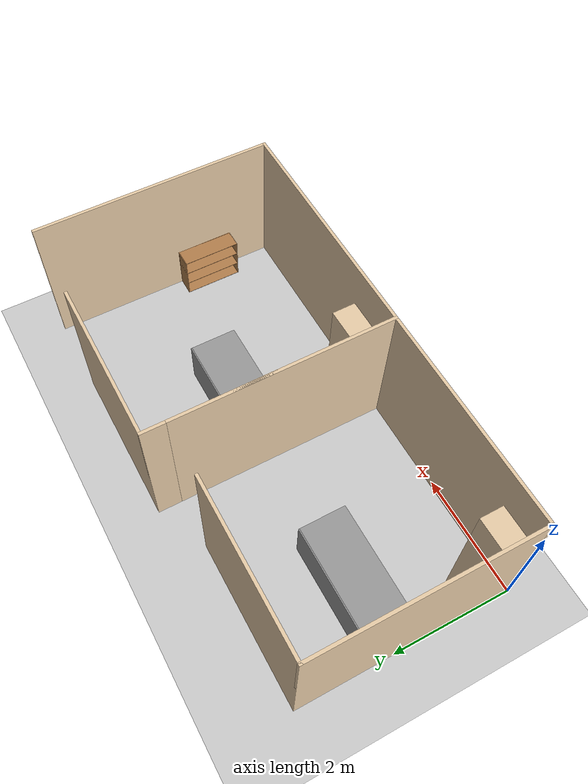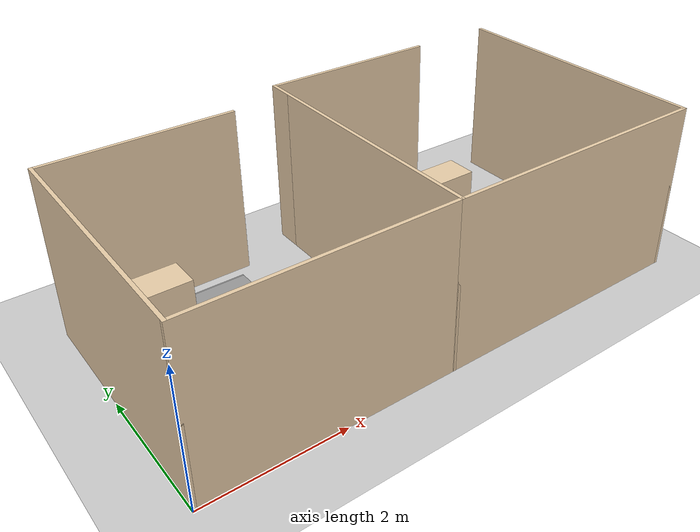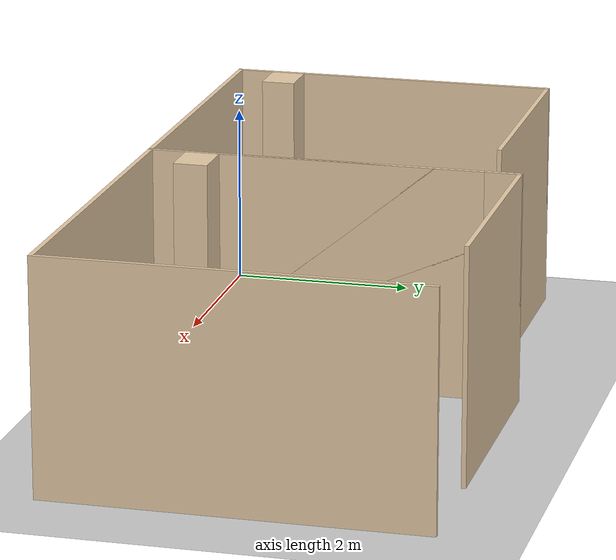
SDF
<?xml version="1.0"?>
<sdf version="1.7">
	<world name="default">
		<include>
			<uri>model://sun</uri>
			<pose>0 0 0 0 0 0</pose>
		</include>

		<include>
			<uri>model://ground_plane</uri>
			<pose>0 0 0 0 0 0</pose>
		</include>

		<include>
			<uri>model://Office1Walls</uri>
			<pose>0 0 0 0 0 0</pose>
		</include>

		<include>
			<uri>model://Office2Walls</uri>
			<pose>3.59 0 0 0 0 0</pose>
		</include>

		<include>
			<uri>model://Table</uri>
			<name>Table_1</name>
			<pose>0.05 1.65 0 0 0 0</pose>
		</include>

		<include>
			<uri>model://Table</uri>
			<name>Table_2</name>
			<pose>3.64 1.65 0 0 0 0</pose>
		</include>

		<include>
			<uri>model://FileCabinet</uri>
			<name>File_Cabinet</name>
			<pose>7.43 1.25 0 0 0 -1.5708</pose>
		</include>
	</world>
</sdf>

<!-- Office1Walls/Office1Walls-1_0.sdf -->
<sdf version="1.7">

	<model name="Office1Walls">

		<static>true</static>
		<link name="office">
			<collision name="left_wall_collision">
				<pose>0.025 1.82 1.25 1.5708 0 1.5708</pose>
				<geometry>
					<box>
						<size>3.64 2.5 0.05</size>
					</box>
				</geometry>
			</collision>
			<visual name="left_wall_visual">
				<pose>0.025 1.82 1.25 1.5708 0 1.5708</pose>
				<geometry>
					<box>
						<size>3.64 2.5 0.05</size>
						</box>
				</geometry>
				<material>
					<script>
						<uri>file://media/materials/scripts/gazebo.material</uri>
						<name>Gazebo/Grey</name>
					</script>

					<ambient>1 1 1 1</ambient>
					<diffuse>0.9098 0.80392 0.65882 1</diffuse>
					<specular>0.02 0.02 0.02 1</specular>
					<emissive>0 0 0 1</emissive>
				</material>
			</visual>

			<collision name="front_wall_collision">
				<pose>1.37 3.615 1.25 1.5708 0 0</pose>
				<geometry>
					<box>
						<size>2.74 2.5 0.05</size>
					</box>
				</geometry>
			</collision>
			<visual name="front_wall_visual">
				<pose>1.37 3.615 1.25 1.5708 0 0</pose>
				<geometry>
					<box>
						<size>2.74 2.5 0.05</size>
					</box>
				</geometry>
				<material>
					<script>
						<uri>file://media/materials/scripts/gazebo.material</uri>
						<name>Gazebo/Grey</name>
					</script>

					<ambient>1 1 1 1</ambient>
					<diffuse>0.9098 0.80392 0.65882 1</diffuse>
					<specular>0.02 0.02 0.02 1</specular>
					<emissive>0 0 0 1</emissive>
				</material>
			</visual>

			<visual name="right_wall_visual">
				<pose>3.615 1.82 1.25 1.5708 0 1.5708</pose>
				<geometry>
					<box>
						<size>3.64 2.5 0.05</size>
					</box>
				</geometry>
				<material>
					<script>
						<uri>file://media/materials/scripts/gazebo.material</uri>
						<name>Gazebo/Grey</name>
					</script>

					<ambient>1 1 1 1</ambient>
					<diffuse>0.9098 0.80392 0.65882 1</diffuse>
					<specular>0.02 0.02 0.02 1</specular>
					<emissive>0 0 0 1</emissive>
				</material>
			</visual>

			<collision name="back_wall_collision">
				<pose>1.82 0.025 1.25 1.5708 0 0</pose>
				<geometry>
					<box>
						<size>3.64 2.5 0.05</size>
					</box>
				</geometry>
			</collision>
			<visual name="back_wall_visual">
				<pose>1.82 0.025 1.25 1.5708  0 0</pose>
				<geometry>
					<box>
						<size>3.64 2.5 0.05</size>
					</box>
				</geometry>
				<material>
					<script>
						<uri>file://media/materials/scripts/gazebo.material</uri>
						<name>Gazebo/Grey</name>
					</script>

					<ambient>1 1 1 1</ambient>
					<diffuse>0.9098 0.80392 0.65882 1</diffuse>
					<specular>0.02 0.02 0.02 1</specular>
					<emissive>0 0 0 1</emissive>
				</material>
			</visual>

			<collision name="column_collision">
				<pose> 0.285 0.6 1.25 0 0 0</pose>
				<geometry>
					<box>
						<size>0.47 0.37 2.5</size>
					</box>
				</geometry>
			</collision>
			<visual name="column_visual">
				<pose>0.285 0.6 1.25 0 0 0</pose>
				<geometry>
					<box>
						<size>0.47 0.37 2.5</size>
					</box>
				</geometry>
				<material>
					<script>
						<uri>file://media/materials/scripts/gazebo.material</uri>
						<name>Gazebo/Grey</name>
					</script>

					<ambient>1 1 1 1</ambient>
					<diffuse>0.9098 0.80392 0.65882 1</diffuse>
					<specular>0.02 0.02 0.02 1</specular>
					<emissive>0 0 0 1</emissive>
				</material>
			</visual>
		</link>
	</model>
</sdf>

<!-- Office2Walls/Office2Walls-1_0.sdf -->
<sdf version="1.7">

	<model name="Office2Walls">

		<static>true</static>
		<link name="office">
			<collision name="left_wall_collision">
				<pose>0.025 2.02 1.25 1.5708 0 1.5708</pose>
				<geometry>
					<box>
						<size>4.04 2.5 0.05</size>
					</box>
				</geometry>
			</collision>
			<visual name="left_wall_visual">
				<pose>0.025 2.02 1.25 1.5708 0 1.5708</pose>
				<geometry>
					<box>
						<size>4.04 2.5 0.05</size>
						</box>
				</geometry>
				<material>
					<script>
						<uri>file://media/materials/scripts/gazebo.material</uri>
						<name>Gazebo/Grey</name>
					</script>

					<ambient>1 1 1 1</ambient>
					<diffuse>0.9098 0.80392 0.65882 1</diffuse>
					<specular>0.02 0.02 0.02 1</specular>
					<emissive>0 0 0 1</emissive>
				</material>
			</visual>

			<collision name="front_wall_collision">
				<pose>1.345 4.015 1.25 1.5708 0 0</pose>
				<geometry>
					<box>
						<size>2.69 2.5 0.05</size>
					</box>
				</geometry>
			</collision>
			<visual name="front_wall_visual">
				<pose>1.345 4.015 1.25 1.5708 0 0</pose>
				<geometry>
					<box>
						<size>2.69 2.5 0.05</size>
					</box>
				</geometry>
				<material>
					<script>
						<uri>file://media/materials/scripts/gazebo.material</uri>
						<name>Gazebo/Grey</name>
					</script>

					<ambient>1 1 1 1</ambient>
					<diffuse>0.9098 0.80392 0.65882 1</diffuse>
					<specular>0.02 0.02 0.02 1</specular>
					<emissive>0 0 0 1</emissive>
				</material>
			</visual>

			<collision name="right_wall_collision">
				<pose>4.015 2.02 1.25 1.5708 0 1.5708</pose>
				<geometry>
					<box>
						<size>4.04 2.5 0.05</size>
					</box>
				</geometry>
			</collision>
			<visual name="right_wall_visual">
				<pose>4.015 2.02 1.25 1.5708 0 1.5708</pose>
				<geometry>
					<box>
						<size>4.04 2.5 0.05</size>
					</box>
				</geometry>
				<material>
					<script>
						<uri>file://media/materials/scripts/gazebo.material</uri>
						<name>Gazebo/Grey</name>
					</script>

					<ambient>1 1 1 1</ambient>
					<diffuse>0.9098 0.80392 0.65882 1</diffuse>
					<specular>0.02 0.02 0.02 1</specular>
					<emissive>0 0 0 1</emissive>
				</material>
			</visual>

			<collision name="back_wall_collision">
				<pose>2.02 0.025 1.25 1.5708 0 0</pose>
				<geometry>
					<box>
						<size>4.04 2.5 0.05</size>
					</box>
				</geometry>
			</collision>
			<visual name="back_wall_visual">
				<pose>2.02 0.025 1.25 1.5708  0 0</pose>
				<geometry>
					<box>
						<size>4.04 2.5 0.05</size>
					</box>
				</geometry>
				<material>
					<script>
						<uri>file://media/materials/scripts/gazebo.material</uri>
						<name>Gazebo/Grey</name>
					</script>

					<ambient>1 1 1 1</ambient>
					<diffuse>0.9098 0.80392 0.65882 1</diffuse>
					<specular>0.02 0.02 0.02 1</specular>
					<emissive>0 0 0 1</emissive>
				</material>
			</visual>

			<collision name="column_collision">
				<pose> 0.285 0.6 1.25 0 0 0</pose>
				<geometry>
					<box>
						<size>0.47 0.37 2.5</size>
					</box>
				</geometry>
			</collision>
			<visual name="column_visual">
				<pose>0.285 0.6 1.25 0 0 0</pose>
				<geometry>
					<box>
						<size>0.47 0.37 2.5</size>
					</box>
				</geometry>
				<material>
					<script>
						<uri>file://media/materials/scripts/gazebo.material</uri>
						<name>Gazebo/Grey</name>
					</script>

					<ambient>1 1 1 1</ambient>
					<diffuse>0.9098 0.80392 0.65882 1</diffuse>
					<specular>0.02 0.02 0.02 1</specular>
					<emissive>0 0 0 1</emissive>
				</material>
			</visual>
		</link>
	</model>
</sdf>

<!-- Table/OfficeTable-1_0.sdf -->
<sdf version="1.7">

	<model name="OfficeTable">

		<static>true</static>
		<link name="link">
			<collision name="drawers_collision">
				<pose>1.75 0.385 0.38 0 0 0</pose>
				<geometry>
					<box>
						<size>0.5 0.77 0.76</size>
					</box>
				</geometry>
			</collision>
			<visual name="drawers_visual">
				<pose>1.75 0.385 0.38 0 0 0</pose>
				<geometry>
					<box>
						<size>0.5 0.77 0.76</size>
					</box>
				</geometry>
				<material>
					<script>
						<uri>file://media/materials/scripts/gazebo.material</uri>
						<name>Gazebo/Grey</name>
					</script>

					<ambient>1 1 1 1</ambient>
					<diffuse>0.35 0.35 0.35 1</diffuse>
					<specular>0.02 0.02 0.02 1</specular>
					<emissive>0 0 0 1</emissive>
				</material>
			</visual>

			<collision name="sidesupport_collision">
				<pose>0.01 0.385 0.38 0 0 0</pose>
				<geometry>
					<box>
						<size>0.02 0.77 0.76</size>
					</box>
				</geometry>
			</collision>
			<visual name="sidesupport_visual">
				<pose>0.01 0.385 0.38 0 0 0</pose>
				<geometry>
					<box>
						<size>0.02 0.77 0.76</size>
					</box>
				</geometry>
				<material>
					<script>
						<uri>file://media/materials/scripts/gazebo.material</uri>
						<name>Gazebo/Grey</name>
					</script>

					<ambient>1 1 1 1</ambient>
					<diffuse>0.35 0.35 0.35 1</diffuse>
					<specular>0.02 0.02 0.02 1</specular>
					<emissive>0 0 0 1</emissive>
				</material>
			</visual>

			<collision name="tabletop_collision">
				<pose>1.0 0.385 0.77 0 0 0</pose>
				<geometry>
					<box>
						<size>2.0 0.77 0.02</size>
					</box>
				</geometry>
			</collision>
			<visual name="tabletop_visual">
				<pose>1.0 0.385 0.77 0 0 0</pose>
				<geometry>
					<box>
						<size>2.0 0.77 0.02</size>
					</box>
				</geometry>
				<material>
					<script>
						<uri>file://media/materials/scripts/gazebo.material</uri>
						<name>Gazebo/Grey</name>
					</script>

					<ambient>1 1 1 1</ambient>
					<diffuse>0.95 0.95 0.95 1</diffuse>
					<specular>0.02 0.02 0.02 1</specular>
					<emissive>0 0 0 1</emissive>
				</material>
			</visual>

			<collision name="frontsupport_collision">
				<pose> 1.0 0.78 0.39 0 0 0</pose>
				<geometry>
					<box>
						<size>2.0 0.02 0.78</size>
					</box>
				</geometry>
			</collision>
			<visual name="frontsupport_visual">
				<pose>1.0 0.78 0.39 0 0 0</pose>
				<geometry>
					<box>
						<size>2.0 0.02 0.78</size>
					</box>
				</geometry>
				<material>
					<script>
						<uri>file://media/materials/scripts/gazebo.material</uri>
						<name>Gazebo/Grey</name>
					</script>

					<ambient>1 1 1 1</ambient>
					<diffuse>0.95 0.95 0.95 1</diffuse>
					<specular>0.02 0.02 0.02 1</specular>
					<emissive>0 0 0 1</emissive>
				</material>
			</visual>
		</link>
	</model>
</sdf>

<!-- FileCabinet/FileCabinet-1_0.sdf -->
<sdf version="1.7">
<model name="bookshelf">
	<static>true</static>
	<link name="link">
		<collision name="back">
			<pose>0 0.145 0.39 1.5708 0 0</pose>
			<geometry>
				<box>
					<size>1 0.78 0.01</size>
				</box>
			</geometry>
		</collision>
		<visual name="back">
			<pose>0 0.145 0.39 1.5708 0 0</pose>
			<geometry>
				<box>
					<size>1 0.78 0.01</size>
				</box>
			</geometry>
			<material>
				<script>
					<uri>file://media/materials/scripts/gazebo.material</uri>
					<name>Gazebo/Wood</name>
				</script>
			</material>
		</visual>

		<collision name="left">
			<pose>-0.495 0 0.39 0 1.5708 0</pose>
			<geometry>
				<box>
					<size>0.78 0.3 0.01</size>
				</box>
			</geometry>
		</collision>
		<visual name="left">
			<pose>-0.495 0 0.39 0 1.5708 0</pose>
			<geometry>
				<box>
					<size>0.78 0.3 0.01</size>
				</box>
			</geometry>
			<material>
				<script>
					<uri>file://media/materials/scripts/gazebo.material</uri>
					<name>Gazebo/Wood</name>
				</script>
			</material>
		</visual>

		<collision name="right">
			<pose>0.495 0 0.39 0 1.5708 0</pose>
			<geometry>
				<box>
					<size>0.78 0.3 0.01</size>
				</box>
			</geometry>
		</collision>
		<visual name="right">
			<pose>0.495 0 0.39 0 1.5708 0</pose>
			<geometry>
				<box>
					<size>0.78 0.3 0.01</size>
				</box>
			</geometry>
			<material>
				<script>
					<uri>file://media/materials/scripts/gazebo.material</uri>
					<name>Gazebo/Wood</name>
				</script>
			</material>
		</visual>

		<collision name="bottom">
			<pose>0 0 0.0.005 0 0 0</pose>
			<geometry>
				<box>
					<size>1 0.3 0.01</size>
				</box>
			</geometry>
		</collision>
		<visual name="bottom">
			<pose>0 0 0.005 0 0 0</pose>
			<geometry>
				<box>
					<size>1 0.3 0.01</size>
				</box>
			</geometry>
			<material>
				<script>
					<uri>file://media/materials/scripts/gazebo.material</uri>
					<name>Gazebo/Wood</name>
				</script>
			</material>
		</visual>

		<collision name="top">
			<pose>0 0 0.775 0 0 0</pose>
			<geometry>
				<box>
					<size>1 0.3 0.01</size>
				</box>
			</geometry>
		</collision>
		<visual name="top">
			<pose>0 0 0.775 0 0 0</pose>
			<geometry>
				<box>
					<size>1 0.3 0.01</size>
				</box>
			</geometry>
			<material>
				<script>
					<uri>file://media/materials/scripts/gazebo.material</uri>
					<name>Gazebo/Wood</name>
				</script>
			</material>
		</visual>

		<collision name="shelf_1">
			<pose>0 0 0.26 0 0 0</pose>
			<geometry>
				<box>
					<size>1 0.3 0.01</size>
				</box>
			</geometry>
		</collision>
		<visual name="shelf_1">
			<pose>0 0 0.26 0 0 0</pose>
			<geometry>
				<box>
					<size>1 0.3 0.01</size>
				</box>
			</geometry>
			<material>
				<script>
					<uri>file://media/materials/scripts/gazebo.material</uri>
					<name>Gazebo/Wood</name>
				</script>
			</material>
		</visual>

		<collision name="shelf_2">
			<pose>0 0 0.52 0 0 0</pose>
			<geometry>
				<box>
					<size>1 0.3 0.01</size>
				</box>
			</geometry>
		</collision>
		<visual name="shelf_2">
			<pose>0 0 0.52 0 0 0</pose>
			<geometry>
				<box>
					<size>1 0.3 0.01</size>
				</box>
			</geometry>
			<material>
				<script>
					<uri>file://media/materials/scripts/gazebo.material</uri>
					<name>Gazebo/Wood</name>
				</script>
			</material>
		</visual>

	</link>
	</model>
</sdf>
